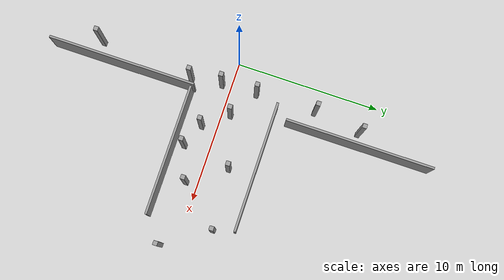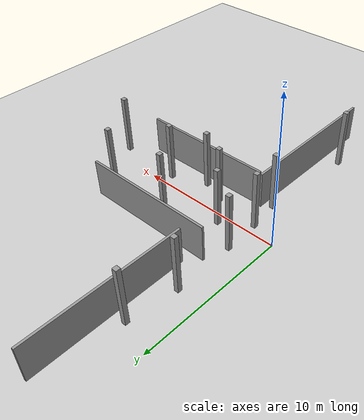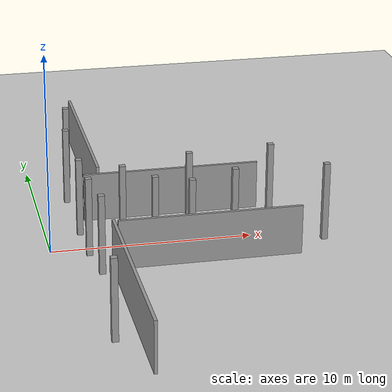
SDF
<sdf version="1.6">
 <world name="default">
  <model name="ground_plane">
   <static>1</static>
   <link name="link">
    <collision name="collision">
     <geometry><plane><normal>0 0 1</normal><size>100 100</size></plane></geometry>
     <surface><friction><ode><mu>100</mu><mu2>50</mu2></ode></friction></surface>
    </collision>
    <visual name="visual">
     <cast_shadows>0</cast_shadows>
     <geometry><plane><normal>0 0 1</normal><size>100 100</size></plane></geometry>
     <material>
      <script><uri>file://media/materials/scripts/gazebo.material</uri><name>Gazebo/Grey</name></script>
     </material>
    </visual>
   </link>
  </model>
  <model name="Untitled_clone_clone">
   <pose>7.44153 -2.41857 0 0 -0 0</pose>
   <link name="Wall_1">
    <collision name="Wall_1_Collision">
     <geometry><box><size>9 0.15 2.5</size></box></geometry>
     <pose>0 0 1.25 0 -0 0</pose>
    </collision>
    <visual name="Wall_1_Visual">
     <pose>0 0 1.25 0 -0 0</pose>
     <geometry><box><size>9 0.15 2.5</size></box></geometry>
     <material>
      <script><uri>file://media/materials/scripts/gazebo.material</uri><name>Gazebo/Grey</name></script>
      <ambient>1 1 1 1</ambient>
     </material>
     <meta><layer>0</layer></meta>
    </visual>
   </link>
   <static>1</static>
  </model>
  <model name="Untitled_clone_clone_0">
   <pose>6.68345 3.44528 0 0 -0 0</pose>
   <link name="Wall_1">
    <collision name="Wall_1_Collision">
     <geometry><box><size>9 0.15 2.5</size></box></geometry>
     <pose>0 0 1.25 0 -0 0</pose>
    </collision>
    <visual name="Wall_1_Visual">
     <pose>0 0 1.25 0 -0 0</pose>
     <geometry><box><size>9 0.15 2.5</size></box></geometry>
     <material>
      <script><uri>file://media/materials/scripts/gazebo.material</uri><name>Gazebo/Grey</name></script>
      <ambient>1 1 1 1</ambient>
     </material>
     <meta><layer>0</layer></meta>
    </visual>
   </link>
   <static>1</static>
  </model>
  <model name="Untitled_0_clone">
   <pose>2.75566 -7.3862 0 0 -0 0</pose>
   <link name="Wall_3">
    <collision name="Wall_3_Collision">
     <geometry><box><size>10.25 0.15 2.5</size></box></geometry>
     <pose>0 0 1.25 0 -0 0</pose>
    </collision>
    <visual name="Wall_3_Visual">
     <pose>0 0 1.25 0 -0 0</pose>
     <geometry><box><size>10.25 0.15 2.5</size></box></geometry>
     <material>
      <script><uri>file://media/materials/scripts/gazebo.material</uri><name>Gazebo/Grey</name></script>
      <ambient>1 1 1 1</ambient>
     </material>
     <meta><layer>0</layer></meta>
    </visual>
    <pose>0 0 0 0 -0 -1.5708</pose>
   </link>
   <static>1</static>
  </model>
  <model name="Untitled_0_clone_1">
   <pose>3.06538 9.43333 0 0 -0 0</pose>
   <link name="Wall_3">
    <collision name="Wall_3_Collision">
     <geometry><box><size>10.25 0.15 2.5</size></box></geometry>
     <pose>0 0 1.25 0 -0 0</pose>
    </collision>
    <visual name="Wall_3_Visual">
     <pose>0 0 1.25 0 -0 0</pose>
     <geometry><box><size>10.25 0.15 2.5</size></box></geometry>
     <material>
      <script><uri>file://media/materials/scripts/gazebo.material</uri><name>Gazebo/Grey</name></script>
      <ambient>1 1 1 1</ambient>
     </material>
     <meta><layer>0</layer></meta>
    </visual>
    <pose>0 0 0 0 -0 -1.5708</pose>
   </link>
   <static>1</static>
  </model>
  <model name="unit_box_clone_clone_24_clone_1">
   <link name="link">
    <inertial>
     <mass>1000</mass>
     <inertia><ixx>1340.83</ixx><ixy>0</ixy><ixz>0</ixz><iyy>1340.83</iyy><iyz>0</iyz><izz>15</izz></inertia>
    </inertial>
    <visual name="visual">
     <geometry><box><size>0.3 0.3 4</size></box></geometry>
     <material>
      <script><name>Gazebo/Grey</name><uri>file://media/materials/scripts/gazebo.material</uri></script>
      <shader type="pixel"><normal_map>__default__</normal_map></shader>
      <ambient>0.3 0.3 0.3 1</ambient>
      <diffuse>0.7 0.7 0.7 1</diffuse>
      <specular>0.01 0.01 0.01 1</specular>
      <emissive>0 0 0 1</emissive>
     </material>
    </visual>
    <collision name="collision">
     <geometry><box><size>0.3 0.3 4</size></box></geometry>
     <surface>
      <friction>
       <ode><mu>1</mu><mu2>1</mu2><fdir1>0 0 0</fdir1><slip1>0</slip1><slip2>0</slip2></ode>
       <torsional>
        <coefficient>1</coefficient>
        <patch_radius>0</patch_radius>
        <surface_radius>0</surface_radius>
        <use_patch_radius>1</use_patch_radius>
        <ode><slip>0</slip></ode>
       </torsional>
      </friction>
      <bounce><restitution_coefficient>0</restitution_coefficient><threshold>1e+06</threshold></bounce>
      <contact>
       <collide_without_contact>0</collide_without_contact>
       <collide_without_contact_bitmask>1</collide_without_contact_bitmask>
       <collide_bitmask>1</collide_bitmask>
       <ode>
        <soft_cfm>0</soft_cfm>
        <soft_erp>0.2</soft_erp>
        <kp>1e+13</kp>
        <kd>1</kd>
        <max_vel>0.01</max_vel>
        <min_depth>0</min_depth>
       </ode>
       <bullet>
        <split_impulse>1</split_impulse>
        <split_impulse_penetration_threshold>-0.01</split_impulse_penetration_threshold>
        <soft_cfm>0</soft_cfm>
        <soft_erp>0.2</soft_erp>
        <kp>1e+13</kp>
        <kd>1</kd>
       </bullet>
      </contact>
     </surface>
    </collision>
   </link>
   <static>0</static>
   <pose>1.73831 1.8318 2.00018 0.001194 1e-05 -0.002926</pose>
  </model>
  <model name="unit_box_clone_clone_24_clone_3">
   <link name="link">
    <inertial>
     <mass>1000</mass>
     <inertia><ixx>1340.83</ixx><ixy>0</ixy><ixz>0</ixz><iyy>1340.83</iyy><iyz>0</iyz><izz>15</izz></inertia>
    </inertial>
    <visual name="visual">
     <geometry><box><size>0.3 0.3 4</size></box></geometry>
     <material>
      <script><name>Gazebo/Grey</name><uri>file://media/materials/scripts/gazebo.material</uri></script>
      <shader type="pixel"><normal_map>__default__</normal_map></shader>
      <ambient>0.3 0.3 0.3 1</ambient>
      <diffuse>0.7 0.7 0.7 1</diffuse>
      <specular>0.01 0.01 0.01 1</specular>
      <emissive>0 0 0 1</emissive>
     </material>
    </visual>
    <collision name="collision">
     <geometry><box><size>0.3 0.3 4</size></box></geometry>
     <surface>
      <friction>
       <ode><mu>1</mu><mu2>1</mu2><fdir1>0 0 0</fdir1><slip1>0</slip1><slip2>0</slip2></ode>
       <torsional>
        <coefficient>1</coefficient>
        <patch_radius>0</patch_radius>
        <surface_radius>0</surface_radius>
        <use_patch_radius>1</use_patch_radius>
        <ode><slip>0</slip></ode>
       </torsional>
      </friction>
      <bounce><restitution_coefficient>0</restitution_coefficient><threshold>1e+06</threshold></bounce>
      <contact>
       <collide_without_contact>0</collide_without_contact>
       <collide_without_contact_bitmask>1</collide_without_contact_bitmask>
       <collide_bitmask>1</collide_bitmask>
       <ode>
        <soft_cfm>0</soft_cfm>
        <soft_erp>0.2</soft_erp>
        <kp>1e+13</kp>
        <kd>1</kd>
        <max_vel>0.01</max_vel>
        <min_depth>0</min_depth>
       </ode>
       <bullet>
        <split_impulse>1</split_impulse>
        <split_impulse_penetration_threshold>-0.01</split_impulse_penetration_threshold>
        <soft_cfm>0</soft_cfm>
        <soft_erp>0.2</soft_erp>
        <kp>1e+13</kp>
        <kd>1</kd>
       </bullet>
      </contact>
     </surface>
    </collision>
   </link>
   <static>0</static>
   <pose>1.67141 5.98362 2.00018 0.001194 1e-05 -0.002926</pose>
  </model>
  <model name="unit_box_clone_clone_24_clone_5">
   <link name="link">
    <inertial>
     <mass>1000</mass>
     <inertia><ixx>1340.83</ixx><ixy>0</ixy><ixz>0</ixz><iyy>1340.83</iyy><iyz>0</iyz><izz>15</izz></inertia>
    </inertial>
    <visual name="visual">
     <geometry><box><size>0.3 0.3 4</size></box></geometry>
     <material>
      <script><name>Gazebo/Grey</name><uri>file://media/materials/scripts/gazebo.material</uri></script>
      <shader type="pixel"><normal_map>__default__</normal_map></shader>
      <ambient>0.3 0.3 0.3 1</ambient>
      <diffuse>0.7 0.7 0.7 1</diffuse>
      <specular>0.01 0.01 0.01 1</specular>
      <emissive>0 0 0 1</emissive>
     </material>
    </visual>
    <collision name="collision">
     <geometry><box><size>0.3 0.3 4</size></box></geometry>
     <surface>
      <friction>
       <ode><mu>1</mu><mu2>1</mu2><fdir1>0 0 0</fdir1><slip1>0</slip1><slip2>0</slip2></ode>
       <torsional>
        <coefficient>1</coefficient>
        <patch_radius>0</patch_radius>
        <surface_radius>0</surface_radius>
        <use_patch_radius>1</use_patch_radius>
        <ode><slip>0</slip></ode>
       </torsional>
      </friction>
      <bounce><restitution_coefficient>0</restitution_coefficient><threshold>1e+06</threshold></bounce>
      <contact>
       <collide_without_contact>0</collide_without_contact>
       <collide_without_contact_bitmask>1</collide_without_contact_bitmask>
       <collide_bitmask>1</collide_bitmask>
       <ode>
        <soft_cfm>0</soft_cfm>
        <soft_erp>0.2</soft_erp>
        <kp>1e+13</kp>
        <kd>1</kd>
        <max_vel>0.01</max_vel>
        <min_depth>0</min_depth>
       </ode>
       <bullet>
        <split_impulse>1</split_impulse>
        <split_impulse_penetration_threshold>-0.01</split_impulse_penetration_threshold>
        <soft_cfm>0</soft_cfm>
        <soft_erp>0.2</soft_erp>
        <kp>1e+13</kp>
        <kd>1</kd>
       </bullet>
      </contact>
     </surface>
    </collision>
   </link>
   <static>0</static>
   <pose>2.13379 9.25879 2.00018 0.001194 1e-05 -0.002926</pose>
  </model>
  <model name="unit_box_clone_clone_24_clone_12">
   <link name="link">
    <inertial>
     <mass>1000</mass>
     <inertia><ixx>1340.83</ixx><ixy>0</ixy><ixz>0</ixz><iyy>1340.83</iyy><iyz>0</iyz><izz>15</izz></inertia>
    </inertial>
    <visual name="visual">
     <geometry><box><size>0.3 0.3 4</size></box></geometry>
     <material>
      <script><name>Gazebo/Grey</name><uri>file://media/materials/scripts/gazebo.material</uri></script>
      <shader type="pixel"><normal_map>__default__</normal_map></shader>
      <ambient>0.3 0.3 0.3 1</ambient>
      <diffuse>0.7 0.7 0.7 1</diffuse>
      <specular>0.01 0.01 0.01 1</specular>
      <emissive>0 0 0 1</emissive>
     </material>
    </visual>
    <collision name="collision">
     <geometry><box><size>0.3 0.3 4</size></box></geometry>
     <surface>
      <friction>
       <ode><mu>1</mu><mu2>1</mu2><fdir1>0 0 0</fdir1><slip1>0</slip1><slip2>0</slip2></ode>
       <torsional>
        <coefficient>1</coefficient>
        <patch_radius>0</patch_radius>
        <surface_radius>0</surface_radius>
        <use_patch_radius>1</use_patch_radius>
        <ode><slip>0</slip></ode>
       </torsional>
      </friction>
      <bounce><restitution_coefficient>0</restitution_coefficient><threshold>1e+06</threshold></bounce>
      <contact>
       <collide_without_contact>0</collide_without_contact>
       <collide_without_contact_bitmask>1</collide_without_contact_bitmask>
       <collide_bitmask>1</collide_bitmask>
       <ode>
        <soft_cfm>0</soft_cfm>
        <soft_erp>0.2</soft_erp>
        <kp>1e+13</kp>
        <kd>1</kd>
        <max_vel>0.01</max_vel>
        <min_depth>0</min_depth>
       </ode>
       <bullet>
        <split_impulse>1</split_impulse>
        <split_impulse_penetration_threshold>-0.01</split_impulse_penetration_threshold>
        <soft_cfm>0</soft_cfm>
        <soft_erp>0.2</soft_erp>
        <kp>1e+13</kp>
        <kd>1</kd>
       </bullet>
      </contact>
     </surface>
    </collision>
   </link>
   <static>0</static>
   <pose>1.83327 -0.617567 2.00018 0.001194 1e-05 -0.002926</pose>
  </model>
  <model name="unit_box_clone_clone_24_clone_13">
   <link name="link">
    <inertial>
     <mass>1000</mass>
     <inertia><ixx>1340.83</ixx><ixy>0</ixy><ixz>0</ixz><iyy>1340.83</iyy><iyz>0</iyz><izz>15</izz></inertia>
    </inertial>
    <visual name="visual">
     <geometry><box><size>0.3 0.3 4</size></box></geometry>
     <material>
      <script><name>Gazebo/Grey</name><uri>file://media/materials/scripts/gazebo.material</uri></script>
      <shader type="pixel"><normal_map>__default__</normal_map></shader>
      <ambient>0.3 0.3 0.3 1</ambient>
      <diffuse>0.7 0.7 0.7 1</diffuse>
      <specular>0.01 0.01 0.01 1</specular>
      <emissive>0 0 0 1</emissive>
     </material>
    </visual>
    <collision name="collision">
     <geometry><box><size>0.3 0.3 4</size></box></geometry>
     <surface>
      <friction>
       <ode><mu>1</mu><mu2>1</mu2><fdir1>0 0 0</fdir1><slip1>0</slip1><slip2>0</slip2></ode>
       <torsional>
        <coefficient>1</coefficient>
        <patch_radius>0</patch_radius>
        <surface_radius>0</surface_radius>
        <use_patch_radius>1</use_patch_radius>
        <ode><slip>0</slip></ode>
       </torsional>
      </friction>
      <bounce><restitution_coefficient>0</restitution_coefficient><threshold>1e+06</threshold></bounce>
      <contact>
       <collide_without_contact>0</collide_without_contact>
       <collide_without_contact_bitmask>1</collide_without_contact_bitmask>
       <collide_bitmask>1</collide_bitmask>
       <ode>
        <soft_cfm>0</soft_cfm>
        <soft_erp>0.2</soft_erp>
        <kp>1e+13</kp>
        <kd>1</kd>
        <max_vel>0.01</max_vel>
        <min_depth>0</min_depth>
       </ode>
       <bullet>
        <split_impulse>1</split_impulse>
        <split_impulse_penetration_threshold>-0.01</split_impulse_penetration_threshold>
        <soft_cfm>0</soft_cfm>
        <soft_erp>0.2</soft_erp>
        <kp>1e+13</kp>
        <kd>1</kd>
       </bullet>
      </contact>
     </surface>
    </collision>
   </link>
   <static>0</static>
   <pose>2.11599 -2.7433 2.00018 0.001194 1e-05 -0.002926</pose>
  </model>
  <model name="unit_box_clone_clone_24_clone_16">
   <link name="link">
    <inertial>
     <mass>1000</mass>
     <inertia><ixx>1340.83</ixx><ixy>0</ixy><ixz>0</ixz><iyy>1340.83</iyy><iyz>0</iyz><izz>15</izz></inertia>
    </inertial>
    <visual name="visual">
     <geometry><box><size>0.3 0.3 4</size></box></geometry>
     <material>
      <script><name>Gazebo/Grey</name><uri>file://media/materials/scripts/gazebo.material</uri></script>
      <shader type="pixel"><normal_map>__default__</normal_map></shader>
      <ambient>0.3 0.3 0.3 1</ambient>
      <diffuse>0.7 0.7 0.7 1</diffuse>
      <specular>0.01 0.01 0.01 1</specular>
      <emissive>0 0 0 1</emissive>
     </material>
    </visual>
    <collision name="collision">
     <geometry><box><size>0.3 0.3 4</size></box></geometry>
     <surface>
      <friction>
       <ode><mu>1</mu><mu2>1</mu2><fdir1>0 0 0</fdir1><slip1>0</slip1><slip2>0</slip2></ode>
       <torsional>
        <coefficient>1</coefficient>
        <patch_radius>0</patch_radius>
        <surface_radius>0</surface_radius>
        <use_patch_radius>1</use_patch_radius>
        <ode><slip>0</slip></ode>
       </torsional>
      </friction>
      <bounce><restitution_coefficient>0</restitution_coefficient><threshold>1e+06</threshold></bounce>
      <contact>
       <collide_without_contact>0</collide_without_contact>
       <collide_without_contact_bitmask>1</collide_without_contact_bitmask>
       <collide_bitmask>1</collide_bitmask>
       <ode>
        <soft_cfm>0</soft_cfm>
        <soft_erp>0.2</soft_erp>
        <kp>1e+13</kp>
        <kd>1</kd>
        <max_vel>0.01</max_vel>
        <min_depth>0</min_depth>
       </ode>
       <bullet>
        <split_impulse>1</split_impulse>
        <split_impulse_penetration_threshold>-0.01</split_impulse_penetration_threshold>
        <soft_cfm>0</soft_cfm>
        <soft_erp>0.2</soft_erp>
        <kp>1e+13</kp>
        <kd>1</kd>
       </bullet>
      </contact>
     </surface>
    </collision>
   </link>
   <static>0</static>
   <pose>1.58374 -9.35782 2.00018 0.001194 1e-05 -0.002926</pose>
  </model>
  <model name="unit_box_clone_clone_24_clone_18">
   <link name="link">
    <inertial>
     <mass>1000</mass>
     <inertia><ixx>1340.83</ixx><ixy>0</ixy><ixz>0</ixz><iyy>1340.83</iyy><iyz>0</iyz><izz>15</izz></inertia>
    </inertial>
    <visual name="visual">
     <geometry><box><size>0.3 0.3 4</size></box></geometry>
     <material>
      <script><name>Gazebo/Grey</name><uri>file://media/materials/scripts/gazebo.material</uri></script>
      <shader type="pixel"><normal_map>__default__</normal_map></shader>
      <ambient>0.3 0.3 0.3 1</ambient>
      <diffuse>0.7 0.7 0.7 1</diffuse>
      <specular>0.01 0.01 0.01 1</specular>
      <emissive>0 0 0 1</emissive>
     </material>
    </visual>
    <collision name="collision">
     <geometry><box><size>0.3 0.3 4</size></box></geometry>
     <surface>
      <friction>
       <ode><mu>1</mu><mu2>1</mu2><fdir1>0 0 0</fdir1><slip1>0</slip1><slip2>0</slip2></ode>
       <torsional>
        <coefficient>1</coefficient>
        <patch_radius>0</patch_radius>
        <surface_radius>0</surface_radius>
        <use_patch_radius>1</use_patch_radius>
        <ode><slip>0</slip></ode>
       </torsional>
      </friction>
      <bounce><restitution_coefficient>0</restitution_coefficient><threshold>1e+06</threshold></bounce>
      <contact>
       <collide_without_contact>0</collide_without_contact>
       <collide_without_contact_bitmask>1</collide_without_contact_bitmask>
       <collide_bitmask>1</collide_bitmask>
       <ode>
        <soft_cfm>0</soft_cfm>
        <soft_erp>0.2</soft_erp>
        <kp>1e+13</kp>
        <kd>1</kd>
        <max_vel>0.01</max_vel>
        <min_depth>0</min_depth>
       </ode>
       <bullet>
        <split_impulse>1</split_impulse>
        <split_impulse_penetration_threshold>-0.01</split_impulse_penetration_threshold>
        <soft_cfm>0</soft_cfm>
        <soft_erp>0.2</soft_erp>
        <kp>1e+13</kp>
        <kd>1</kd>
       </bullet>
      </contact>
     </surface>
    </collision>
   </link>
   <static>0</static>
   <pose>7.24097 1.68297 2.00018 0.001194 1e-05 -0.002926</pose>
  </model>
  <model name="unit_box_clone_clone_24_clone_19">
   <link name="link">
    <inertial>
     <mass>1000</mass>
     <inertia><ixx>1340.83</ixx><ixy>0</ixy><ixz>0</ixz><iyy>1340.83</iyy><iyz>0</iyz><izz>15</izz></inertia>
    </inertial>
    <visual name="visual">
     <geometry><box><size>0.3 0.3 4</size></box></geometry>
     <material>
      <script><name>Gazebo/Grey</name><uri>file://media/materials/scripts/gazebo.material</uri></script>
      <shader type="pixel"><normal_map>__default__</normal_map></shader>
      <ambient>0.3 0.3 0.3 1</ambient>
      <diffuse>0.7 0.7 0.7 1</diffuse>
      <specular>0.01 0.01 0.01 1</specular>
      <emissive>0 0 0 1</emissive>
     </material>
    </visual>
    <collision name="collision">
     <geometry><box><size>0.3 0.3 4</size></box></geometry>
     <surface>
      <friction>
       <ode><mu>1</mu><mu2>1</mu2><fdir1>0 0 0</fdir1><slip1>0</slip1><slip2>0</slip2></ode>
       <torsional>
        <coefficient>1</coefficient>
        <patch_radius>0</patch_radius>
        <surface_radius>0</surface_radius>
        <use_patch_radius>1</use_patch_radius>
        <ode><slip>0</slip></ode>
       </torsional>
      </friction>
      <bounce><restitution_coefficient>0</restitution_coefficient><threshold>1e+06</threshold></bounce>
      <contact>
       <collide_without_contact>0</collide_without_contact>
       <collide_without_contact_bitmask>1</collide_without_contact_bitmask>
       <collide_bitmask>1</collide_bitmask>
       <ode>
        <soft_cfm>0</soft_cfm>
        <soft_erp>0.2</soft_erp>
        <kp>1e+13</kp>
        <kd>1</kd>
        <max_vel>0.01</max_vel>
        <min_depth>0</min_depth>
       </ode>
       <bullet>
        <split_impulse>1</split_impulse>
        <split_impulse_penetration_threshold>-0.01</split_impulse_penetration_threshold>
        <soft_cfm>0</soft_cfm>
        <soft_erp>0.2</soft_erp>
        <kp>1e+13</kp>
        <kd>1</kd>
       </bullet>
      </contact>
     </surface>
    </collision>
   </link>
   <static>0</static>
   <pose>5 -1.0063 2.00018 0.001194 1e-05 -0.002926</pose>
  </model>
  <model name="unit_box_clone_clone_24_clone_20">
   <link name="link">
    <inertial>
     <mass>1000</mass>
     <inertia><ixx>1340.83</ixx><ixy>0</ixy><ixz>0</ixz><iyy>1340.83</iyy><iyz>0</iyz><izz>15</izz></inertia>
    </inertial>
    <visual name="visual">
     <geometry><box><size>0.3 0.3 4</size></box></geometry>
     <material>
      <script><name>Gazebo/Grey</name><uri>file://media/materials/scripts/gazebo.material</uri></script>
      <shader type="pixel"><normal_map>__default__</normal_map></shader>
      <ambient>0.3 0.3 0.3 1</ambient>
      <diffuse>0.7 0.7 0.7 1</diffuse>
      <specular>0.01 0.01 0.01 1</specular>
      <emissive>0 0 0 1</emissive>
     </material>
    </visual>
    <collision name="collision">
     <geometry><box><size>0.3 0.3 4</size></box></geometry>
     <surface>
      <friction>
       <ode><mu>1</mu><mu2>1</mu2><fdir1>0 0 0</fdir1><slip1>0</slip1><slip2>0</slip2></ode>
       <torsional>
        <coefficient>1</coefficient>
        <patch_radius>0</patch_radius>
        <surface_radius>0</surface_radius>
        <use_patch_radius>1</use_patch_radius>
        <ode><slip>0</slip></ode>
       </torsional>
      </friction>
      <bounce><restitution_coefficient>0</restitution_coefficient><threshold>1e+06</threshold></bounce>
      <contact>
       <collide_without_contact>0</collide_without_contact>
       <collide_without_contact_bitmask>1</collide_without_contact_bitmask>
       <collide_bitmask>1</collide_bitmask>
       <ode>
        <soft_cfm>0</soft_cfm>
        <soft_erp>0.2</soft_erp>
        <kp>1e+13</kp>
        <kd>1</kd>
        <max_vel>0.01</max_vel>
        <min_depth>0</min_depth>
       </ode>
       <bullet>
        <split_impulse>1</split_impulse>
        <split_impulse_penetration_threshold>-0.01</split_impulse_penetration_threshold>
        <soft_cfm>0</soft_cfm>
        <soft_erp>0.2</soft_erp>
        <kp>1e+13</kp>
        <kd>1</kd>
       </bullet>
      </contact>
     </surface>
    </collision>
   </link>
   <static>0</static>
   <pose>6.65386 -1.69851 2.00018 0.001194 1e-05 -0.002926</pose>
  </model>
  <model name="unit_box_clone_clone_24_clone_21">
   <link name="link">
    <inertial>
     <mass>1000</mass>
     <inertia><ixx>1340.83</ixx><ixy>0</ixy><ixz>0</ixz><iyy>1340.83</iyy><iyz>0</iyz><izz>15</izz></inertia>
    </inertial>
    <visual name="visual">
     <geometry><box><size>0.3 0.3 4</size></box></geometry>
     <material>
      <script><name>Gazebo/Grey</name><uri>file://media/materials/scripts/gazebo.material</uri></script>
      <shader type="pixel"><normal_map>__default__</normal_map></shader>
      <ambient>0.3 0.3 0.3 1</ambient>
      <diffuse>0.7 0.7 0.7 1</diffuse>
      <specular>0.01 0.01 0.01 1</specular>
      <emissive>0 0 0 1</emissive>
     </material>
    </visual>
    <collision name="collision">
     <geometry><box><size>0.3 0.3 4</size></box></geometry>
     <surface>
      <friction>
       <ode><mu>1</mu><mu2>1</mu2><fdir1>0 0 0</fdir1><slip1>0</slip1><slip2>0</slip2></ode>
       <torsional>
        <coefficient>1</coefficient>
        <patch_radius>0</patch_radius>
        <surface_radius>0</surface_radius>
        <use_patch_radius>1</use_patch_radius>
        <ode><slip>0</slip></ode>
       </torsional>
      </friction>
      <bounce><restitution_coefficient>0</restitution_coefficient><threshold>1e+06</threshold></bounce>
      <contact>
       <collide_without_contact>0</collide_without_contact>
       <collide_without_contact_bitmask>1</collide_without_contact_bitmask>
       <collide_bitmask>1</collide_bitmask>
       <ode>
        <soft_cfm>0</soft_cfm>
        <soft_erp>0.2</soft_erp>
        <kp>1e+13</kp>
        <kd>1</kd>
        <max_vel>0.01</max_vel>
        <min_depth>0</min_depth>
       </ode>
       <bullet>
        <split_impulse>1</split_impulse>
        <split_impulse_penetration_threshold>-0.01</split_impulse_penetration_threshold>
        <soft_cfm>0</soft_cfm>
        <soft_erp>0.2</soft_erp>
        <kp>1e+13</kp>
        <kd>1</kd>
       </bullet>
      </contact>
     </surface>
    </collision>
   </link>
   <static>0</static>
   <pose>8.98398 -0.77021 2.00018 0.001194 1e-05 -0.002926</pose>
  </model>
  <model name="unit_box_clone_clone_24_clone_22">
   <link name="link">
    <inertial>
     <mass>1000</mass>
     <inertia><ixx>1340.83</ixx><ixy>0</ixy><ixz>0</ixz><iyy>1340.83</iyy><iyz>0</iyz><izz>15</izz></inertia>
    </inertial>
    <visual name="visual">
     <geometry><box><size>0.3 0.3 4</size></box></geometry>
     <material>
      <script><name>Gazebo/Grey</name><uri>file://media/materials/scripts/gazebo.material</uri></script>
      <shader type="pixel"><normal_map>__default__</normal_map></shader>
      <ambient>0.3 0.3 0.3 1</ambient>
      <diffuse>0.7 0.7 0.7 1</diffuse>
      <specular>0.01 0.01 0.01 1</specular>
      <emissive>0 0 0 1</emissive>
     </material>
    </visual>
    <collision name="collision">
     <geometry><box><size>0.3 0.3 4</size></box></geometry>
     <surface>
      <friction>
       <ode><mu>1</mu><mu2>1</mu2><fdir1>0 0 0</fdir1><slip1>0</slip1><slip2>0</slip2></ode>
       <torsional>
        <coefficient>1</coefficient>
        <patch_radius>0</patch_radius>
        <surface_radius>0</surface_radius>
        <use_patch_radius>1</use_patch_radius>
        <ode><slip>0</slip></ode>
       </torsional>
      </friction>
      <bounce><restitution_coefficient>0</restitution_coefficient><threshold>1e+06</threshold></bounce>
      <contact>
       <collide_without_contact>0</collide_without_contact>
       <collide_without_contact_bitmask>1</collide_without_contact_bitmask>
       <collide_bitmask>1</collide_bitmask>
       <ode>
        <soft_cfm>0</soft_cfm>
        <soft_erp>0.2</soft_erp>
        <kp>1e+13</kp>
        <kd>1</kd>
        <max_vel>0.01</max_vel>
        <min_depth>0</min_depth>
       </ode>
       <bullet>
        <split_impulse>1</split_impulse>
        <split_impulse_penetration_threshold>-0.01</split_impulse_penetration_threshold>
        <soft_cfm>0</soft_cfm>
        <soft_erp>0.2</soft_erp>
        <kp>1e+13</kp>
        <kd>1</kd>
       </bullet>
      </contact>
     </surface>
    </collision>
   </link>
   <static>0</static>
   <pose>3.69286 0.617933 2.00018 0.001194 1e-05 -0.002926</pose>
  </model>
  <model name="unit_box_clone_clone_24_clone_23">
   <link name="link">
    <inertial>
     <mass>1000</mass>
     <inertia><ixx>1340.83</ixx><ixy>0</ixy><ixz>0</ixz><iyy>1340.83</iyy><iyz>0</iyz><izz>15</izz></inertia>
    </inertial>
    <visual name="visual">
     <geometry><box><size>0.3 0.3 4</size></box></geometry>
     <material>
      <script><name>Gazebo/Grey</name><uri>file://media/materials/scripts/gazebo.material</uri></script>
      <shader type="pixel"><normal_map>__default__</normal_map></shader>
      <ambient>0.3 0.3 0.3 1</ambient>
      <diffuse>0.7 0.7 0.7 1</diffuse>
      <specular>0.01 0.01 0.01 1</specular>
      <emissive>0 0 0 1</emissive>
     </material>
    </visual>
    <collision name="collision">
     <geometry><box><size>0.3 0.3 4</size></box></geometry>
     <surface>
      <friction>
       <ode><mu>1</mu><mu2>1</mu2><fdir1>0 0 0</fdir1><slip1>0</slip1><slip2>0</slip2></ode>
       <torsional>
        <coefficient>1</coefficient>
        <patch_radius>0</patch_radius>
        <surface_radius>0</surface_radius>
        <use_patch_radius>1</use_patch_radius>
        <ode><slip>0</slip></ode>
       </torsional>
      </friction>
      <bounce><restitution_coefficient>0</restitution_coefficient><threshold>1e+06</threshold></bounce>
      <contact>
       <collide_without_contact>0</collide_without_contact>
       <collide_without_contact_bitmask>1</collide_without_contact_bitmask>
       <collide_bitmask>1</collide_bitmask>
       <ode>
        <soft_cfm>0</soft_cfm>
        <soft_erp>0.2</soft_erp>
        <kp>1e+13</kp>
        <kd>1</kd>
        <max_vel>0.01</max_vel>
        <min_depth>0</min_depth>
       </ode>
       <bullet>
        <split_impulse>1</split_impulse>
        <split_impulse_penetration_threshold>-0.01</split_impulse_penetration_threshold>
        <soft_cfm>0</soft_cfm>
        <soft_erp>0.2</soft_erp>
        <kp>1e+13</kp>
        <kd>1</kd>
       </bullet>
      </contact>
     </surface>
    </collision>
   </link>
   <static>0</static>
   <pose>11.486 2.02033 2.00018 0.001194 1e-05 -0.002926</pose>
  </model>
  <model name="unit_box_clone_clone_24_clone_24">
   <link name="link">
    <inertial>
     <mass>1000</mass>
     <inertia><ixx>1340.83</ixx><ixy>0</ixy><ixz>0</ixz><iyy>1340.83</iyy><iyz>0</iyz><izz>15</izz></inertia>
    </inertial>
    <visual name="visual">
     <geometry><box><size>0.3 0.3 4</size></box></geometry>
     <material>
      <script><name>Gazebo/Grey</name><uri>file://media/materials/scripts/gazebo.material</uri></script>
      <shader type="pixel"><normal_map>__default__</normal_map></shader>
      <ambient>0.3 0.3 0.3 1</ambient>
      <diffuse>0.7 0.7 0.7 1</diffuse>
      <specular>0.01 0.01 0.01 1</specular>
      <emissive>0 0 0 1</emissive>
     </material>
    </visual>
    <collision name="collision">
     <geometry><box><size>0.3 0.3 4</size></box></geometry>
     <surface>
      <friction>
       <ode><mu>1</mu><mu2>1</mu2><fdir1>0 0 0</fdir1><slip1>0</slip1><slip2>0</slip2></ode>
       <torsional>
        <coefficient>1</coefficient>
        <patch_radius>0</patch_radius>
        <surface_radius>0</surface_radius>
        <use_patch_radius>1</use_patch_radius>
        <ode><slip>0</slip></ode>
       </torsional>
      </friction>
      <bounce><restitution_coefficient>0</restitution_coefficient><threshold>1e+06</threshold></bounce>
      <contact>
       <collide_without_contact>0</collide_without_contact>
       <collide_without_contact_bitmask>1</collide_without_contact_bitmask>
       <collide_bitmask>1</collide_bitmask>
       <ode>
        <soft_cfm>0</soft_cfm>
        <soft_erp>0.2</soft_erp>
        <kp>1e+13</kp>
        <kd>1</kd>
        <max_vel>0.01</max_vel>
        <min_depth>0</min_depth>
       </ode>
       <bullet>
        <split_impulse>1</split_impulse>
        <split_impulse_penetration_threshold>-0.01</split_impulse_penetration_threshold>
        <soft_cfm>0</soft_cfm>
        <soft_erp>0.2</soft_erp>
        <kp>1e+13</kp>
        <kd>1</kd>
       </bullet>
      </contact>
     </surface>
    </collision>
   </link>
   <static>0</static>
   <pose>13.4979 -1.03905 2.00018 0.001194 1e-05 -0.002926</pose>
  </model>
 </world>
</sdf>
